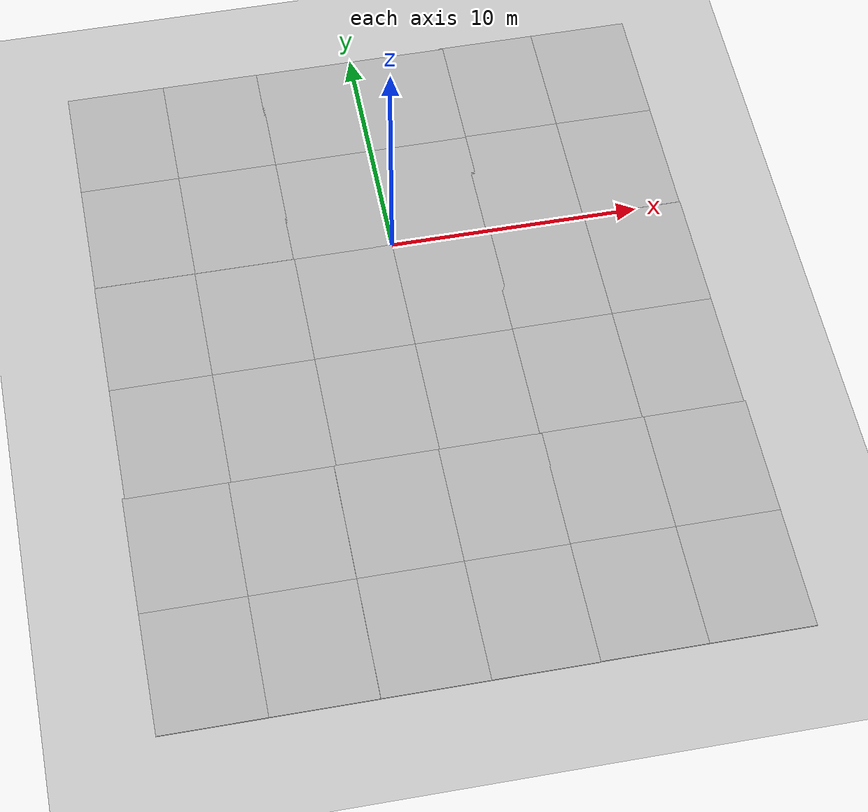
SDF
<sdf version="1.6">
 <world name="default">
  <light name="sun" type="directional">
   <pose>0 0 10 0 -0 0</pose>
   <diffuse>0.8 0.8 0.8 1</diffuse>
   <specular>0.2 0.2 0.2 1</specular>
   <attenuation>
    <range>1000</range>
    <constant>0.9</constant>
    <linear>0.01</linear>
    <quadratic>0.001</quadratic>
   </attenuation>
   <direction>-0.5 0.1 -0.9</direction>
  </light>
  <model name="ground_plane">
   <static>1</static>
   <link name="link">
    <collision name="collision">
     <geometry><plane><normal>0 0 1</normal><size>100 100</size></plane></geometry>
     <surface><friction><ode><mu>100</mu><mu2>50</mu2></ode></friction></surface>
    </collision>
    <visual name="visual">
     <cast_shadows>0</cast_shadows>
     <geometry><plane><normal>0 0 1</normal><size>100 100</size></plane></geometry>
     <material>
      <script><uri>file://media/materials/scripts/gazebo.material</uri><name>Gazebo/Grey</name></script>
     </material>
    </visual>
    <velocity_decay><linear>0</linear><angular>0</angular></velocity_decay>
   </link>
  </model>
  <physics name="default_physics" default="0" type="ode">
   <max_step_size>0.001</max_step_size>
   <real_time_factor>1</real_time_factor>
   <real_time_update_rate>1000</real_time_update_rate>
  </physics>
  <scene><ambient>0.4 0.4 0.4 1</ambient><background>0.7 0.7 0.7 1</background><shadows>1</shadows></scene>
  <gravity>0 0 -9.8</gravity>
  <magnetic_field>6e-06 2.3e-05 -4.2e-05</magnetic_field>
  <atmosphere type="adiabatic"/>
  <spherical_coordinates>
   <surface_model>EARTH_WGS84</surface_model>
   <latitude_deg>0</latitude_deg>
   <longitude_deg>0</longitude_deg>
   <elevation>0</elevation>
   <heading_deg>0</heading_deg>
  </spherical_coordinates>
  <model name="mud_box">
   <static>1</static>
   <link name="link">
    <collision name="collision"><geometry><box><size>8 10 0.2</size></box></geometry></collision>
    <visual name="visual_1">
     <pose>-2 2.5 0 0 -0 0</pose>
     <cast_shadows>0</cast_shadows>
     <geometry><box><size>4 5 0.2</size></box></geometry>
     <material>
      <script>
       <uri>model://mud_box/materials/scripts</uri>
       <uri>model://mud_box/materials/textures</uri>
       <name>vrc/mud</name>
      </script>
     </material>
    </visual>
    <visual name="visual_2">
     <pose>2 2.5 0 0 -0 0</pose>
     <cast_shadows>0</cast_shadows>
     <geometry><box><size>4 5 0.2</size></box></geometry>
     <material>
      <script>
       <uri>model://mud_box/materials/scripts</uri>
       <uri>model://mud_box/materials/textures</uri>
       <name>vrc/mud</name>
      </script>
     </material>
    </visual>
    <visual name="visual_3">
     <pose>2 -2.5 0 0 -0 0</pose>
     <cast_shadows>0</cast_shadows>
     <geometry><box><size>4 5 0.2</size></box></geometry>
     <material>
      <script>
       <uri>model://mud_box/materials/scripts</uri>
       <uri>model://mud_box/materials/textures</uri>
       <name>vrc/mud</name>
      </script>
     </material>
    </visual>
    <visual name="visual_4">
     <pose>-2 -2.5 0 0 -0 0</pose>
     <cast_shadows>0</cast_shadows>
     <geometry><box><size>4 5 0.2</size></box></geometry>
     <material>
      <script>
       <uri>model://mud_box/materials/scripts</uri>
       <uri>model://mud_box/materials/textures</uri>
       <name>vrc/mud</name>
      </script>
     </material>
    </visual>
   </link>
   <pose>-0.009651 4.99414 -0.09369 0 -0 0</pose>
  </model>
  <model name="mud_box_clone">
   <static>1</static>
   <link name="link">
    <collision name="collision"><geometry><box><size>8 10 0.2</size></box></geometry></collision>
    <visual name="visual_1">
     <pose>-2 2.5 0 0 -0 0</pose>
     <cast_shadows>0</cast_shadows>
     <geometry><box><size>4 5 0.2</size></box></geometry>
     <material>
      <script>
       <uri>model://mud_box/materials/scripts</uri>
       <uri>model://mud_box/materials/textures</uri>
       <name>vrc/mud</name>
      </script>
     </material>
    </visual>
    <visual name="visual_2">
     <pose>2 2.5 0 0 -0 0</pose>
     <cast_shadows>0</cast_shadows>
     <geometry><box><size>4 5 0.2</size></box></geometry>
     <material>
      <script>
       <uri>model://mud_box/materials/scripts</uri>
       <uri>model://mud_box/materials/textures</uri>
       <name>vrc/mud</name>
      </script>
     </material>
    </visual>
    <visual name="visual_3">
     <pose>2 -2.5 0 0 -0 0</pose>
     <cast_shadows>0</cast_shadows>
     <geometry><box><size>4 5 0.2</size></box></geometry>
     <material>
      <script>
       <uri>model://mud_box/materials/scripts</uri>
       <uri>model://mud_box/materials/textures</uri>
       <name>vrc/mud</name>
      </script>
     </material>
    </visual>
    <visual name="visual_4">
     <pose>-2 -2.5 0 0 -0 0</pose>
     <cast_shadows>0</cast_shadows>
     <geometry><box><size>4 5 0.2</size></box></geometry>
     <material>
      <script>
       <uri>model://mud_box/materials/scripts</uri>
       <uri>model://mud_box/materials/textures</uri>
       <name>vrc/mud</name>
      </script>
     </material>
    </visual>
   </link>
   <pose>-7.95883 5.00278 -0.09369 0 -0 0</pose>
  </model>
  <model name="mud_box_clone_0">
   <static>1</static>
   <link name="link">
    <collision name="collision"><geometry><box><size>8 10 0.2</size></box></geometry></collision>
    <visual name="visual_1">
     <pose>-2 2.5 0 0 -0 0</pose>
     <cast_shadows>0</cast_shadows>
     <geometry><box><size>4 5 0.2</size></box></geometry>
     <material>
      <script>
       <uri>model://mud_box/materials/scripts</uri>
       <uri>model://mud_box/materials/textures</uri>
       <name>vrc/mud</name>
      </script>
     </material>
    </visual>
    <visual name="visual_2">
     <pose>2 2.5 0 0 -0 0</pose>
     <cast_shadows>0</cast_shadows>
     <geometry><box><size>4 5 0.2</size></box></geometry>
     <material>
      <script>
       <uri>model://mud_box/materials/scripts</uri>
       <uri>model://mud_box/materials/textures</uri>
       <name>vrc/mud</name>
      </script>
     </material>
    </visual>
    <visual name="visual_3">
     <pose>2 -2.5 0 0 -0 0</pose>
     <cast_shadows>0</cast_shadows>
     <geometry><box><size>4 5 0.2</size></box></geometry>
     <material>
      <script>
       <uri>model://mud_box/materials/scripts</uri>
       <uri>model://mud_box/materials/textures</uri>
       <name>vrc/mud</name>
      </script>
     </material>
    </visual>
    <visual name="visual_4">
     <pose>-2 -2.5 0 0 -0 0</pose>
     <cast_shadows>0</cast_shadows>
     <geometry><box><size>4 5 0.2</size></box></geometry>
     <material>
      <script>
       <uri>model://mud_box/materials/scripts</uri>
       <uri>model://mud_box/materials/textures</uri>
       <name>vrc/mud</name>
      </script>
     </material>
    </visual>
   </link>
   <pose>7.82682 5.03351 -0.09369 0 -0 0</pose>
  </model>
  <model name="mud_box_clone_1">
   <static>1</static>
   <link name="link">
    <collision name="collision"><geometry><box><size>8 10 0.2</size></box></geometry></collision>
    <visual name="visual_1">
     <pose>-2 2.5 0 0 -0 0</pose>
     <cast_shadows>0</cast_shadows>
     <geometry><box><size>4 5 0.2</size></box></geometry>
     <material>
      <script>
       <uri>model://mud_box/materials/scripts</uri>
       <uri>model://mud_box/materials/textures</uri>
       <name>vrc/mud</name>
      </script>
     </material>
    </visual>
    <visual name="visual_2">
     <pose>2 2.5 0 0 -0 0</pose>
     <cast_shadows>0</cast_shadows>
     <geometry><box><size>4 5 0.2</size></box></geometry>
     <material>
      <script>
       <uri>model://mud_box/materials/scripts</uri>
       <uri>model://mud_box/materials/textures</uri>
       <name>vrc/mud</name>
      </script>
     </material>
    </visual>
    <visual name="visual_3">
     <pose>2 -2.5 0 0 -0 0</pose>
     <cast_shadows>0</cast_shadows>
     <geometry><box><size>4 5 0.2</size></box></geometry>
     <material>
      <script>
       <uri>model://mud_box/materials/scripts</uri>
       <uri>model://mud_box/materials/textures</uri>
       <name>vrc/mud</name>
      </script>
     </material>
    </visual>
    <visual name="visual_4">
     <pose>-2 -2.5 0 0 -0 0</pose>
     <cast_shadows>0</cast_shadows>
     <geometry><box><size>4 5 0.2</size></box></geometry>
     <material>
      <script>
       <uri>model://mud_box/materials/scripts</uri>
       <uri>model://mud_box/materials/textures</uri>
       <name>vrc/mud</name>
      </script>
     </material>
    </visual>
   </link>
   <pose>-0.016926 -4.99258 -0.09369 0 -0 0</pose>
  </model>
  <model name="mud_box_clone_2">
   <static>1</static>
   <link name="link">
    <collision name="collision"><geometry><box><size>8 10 0.2</size></box></geometry></collision>
    <visual name="visual_1">
     <pose>-2 2.5 0 0 -0 0</pose>
     <cast_shadows>0</cast_shadows>
     <geometry><box><size>4 5 0.2</size></box></geometry>
     <material>
      <script>
       <uri>model://mud_box/materials/scripts</uri>
       <uri>model://mud_box/materials/textures</uri>
       <name>vrc/mud</name>
      </script>
     </material>
    </visual>
    <visual name="visual_2">
     <pose>2 2.5 0 0 -0 0</pose>
     <cast_shadows>0</cast_shadows>
     <geometry><box><size>4 5 0.2</size></box></geometry>
     <material>
      <script>
       <uri>model://mud_box/materials/scripts</uri>
       <uri>model://mud_box/materials/textures</uri>
       <name>vrc/mud</name>
      </script>
     </material>
    </visual>
    <visual name="visual_3">
     <pose>2 -2.5 0 0 -0 0</pose>
     <cast_shadows>0</cast_shadows>
     <geometry><box><size>4 5 0.2</size></box></geometry>
     <material>
      <script>
       <uri>model://mud_box/materials/scripts</uri>
       <uri>model://mud_box/materials/textures</uri>
       <name>vrc/mud</name>
      </script>
     </material>
    </visual>
    <visual name="visual_4">
     <pose>-2 -2.5 0 0 -0 0</pose>
     <cast_shadows>0</cast_shadows>
     <geometry><box><size>4 5 0.2</size></box></geometry>
     <material>
      <script>
       <uri>model://mud_box/materials/scripts</uri>
       <uri>model://mud_box/materials/textures</uri>
       <name>vrc/mud</name>
      </script>
     </material>
    </visual>
   </link>
   <pose>-7.97494 -5.0024 -0.09369 0 -0 0</pose>
  </model>
  <model name="mud_box_clone_3">
   <static>1</static>
   <link name="link">
    <collision name="collision"><geometry><box><size>8 10 0.2</size></box></geometry></collision>
    <visual name="visual_1">
     <pose>-2 2.5 0 0 -0 0</pose>
     <cast_shadows>0</cast_shadows>
     <geometry><box><size>4 5 0.2</size></box></geometry>
     <material>
      <script>
       <uri>model://mud_box/materials/scripts</uri>
       <uri>model://mud_box/materials/textures</uri>
       <name>vrc/mud</name>
      </script>
     </material>
    </visual>
    <visual name="visual_2">
     <pose>2 2.5 0 0 -0 0</pose>
     <cast_shadows>0</cast_shadows>
     <geometry><box><size>4 5 0.2</size></box></geometry>
     <material>
      <script>
       <uri>model://mud_box/materials/scripts</uri>
       <uri>model://mud_box/materials/textures</uri>
       <name>vrc/mud</name>
      </script>
     </material>
    </visual>
    <visual name="visual_3">
     <pose>2 -2.5 0 0 -0 0</pose>
     <cast_shadows>0</cast_shadows>
     <geometry><box><size>4 5 0.2</size></box></geometry>
     <material>
      <script>
       <uri>model://mud_box/materials/scripts</uri>
       <uri>model://mud_box/materials/textures</uri>
       <name>vrc/mud</name>
      </script>
     </material>
    </visual>
    <visual name="visual_4">
     <pose>-2 -2.5 0 0 -0 0</pose>
     <cast_shadows>0</cast_shadows>
     <geometry><box><size>4 5 0.2</size></box></geometry>
     <material>
      <script>
       <uri>model://mud_box/materials/scripts</uri>
       <uri>model://mud_box/materials/textures</uri>
       <name>vrc/mud</name>
      </script>
     </material>
    </visual>
   </link>
   <pose>7.85073 -4.97133 -0.09369 0 -0 0</pose>
  </model>
  <model name="mud_box_clone_1_clone">
   <static>1</static>
   <link name="link">
    <collision name="collision"><geometry><box><size>8 10 0.2</size></box></geometry></collision>
    <visual name="visual_1">
     <pose>-2 2.5 0 0 -0 0</pose>
     <cast_shadows>0</cast_shadows>
     <geometry><box><size>4 5 0.2</size></box></geometry>
     <material>
      <script>
       <uri>model://mud_box/materials/scripts</uri>
       <uri>model://mud_box/materials/textures</uri>
       <name>vrc/mud</name>
      </script>
     </material>
    </visual>
    <visual name="visual_2">
     <pose>2 2.5 0 0 -0 0</pose>
     <cast_shadows>0</cast_shadows>
     <geometry><box><size>4 5 0.2</size></box></geometry>
     <material>
      <script>
       <uri>model://mud_box/materials/scripts</uri>
       <uri>model://mud_box/materials/textures</uri>
       <name>vrc/mud</name>
      </script>
     </material>
    </visual>
    <visual name="visual_3">
     <pose>2 -2.5 0 0 -0 0</pose>
     <cast_shadows>0</cast_shadows>
     <geometry><box><size>4 5 0.2</size></box></geometry>
     <material>
      <script>
       <uri>model://mud_box/materials/scripts</uri>
       <uri>model://mud_box/materials/textures</uri>
       <name>vrc/mud</name>
      </script>
     </material>
    </visual>
    <visual name="visual_4">
     <pose>-2 -2.5 0 0 -0 0</pose>
     <cast_shadows>0</cast_shadows>
     <geometry><box><size>4 5 0.2</size></box></geometry>
     <material>
      <script>
       <uri>model://mud_box/materials/scripts</uri>
       <uri>model://mud_box/materials/textures</uri>
       <name>vrc/mud</name>
      </script>
     </material>
    </visual>
   </link>
   <pose>-0.063415 -14.9826 -0.09369 0 -0 0</pose>
  </model>
  <model name="mud_box_clone_1_clone_0">
   <static>1</static>
   <link name="link">
    <collision name="collision"><geometry><box><size>8 10 0.2</size></box></geometry></collision>
    <visual name="visual_1">
     <pose>-2 2.5 0 0 -0 0</pose>
     <cast_shadows>0</cast_shadows>
     <geometry><box><size>4 5 0.2</size></box></geometry>
     <material>
      <script>
       <uri>model://mud_box/materials/scripts</uri>
       <uri>model://mud_box/materials/textures</uri>
       <name>vrc/mud</name>
      </script>
     </material>
    </visual>
    <visual name="visual_2">
     <pose>2 2.5 0 0 -0 0</pose>
     <cast_shadows>0</cast_shadows>
     <geometry><box><size>4 5 0.2</size></box></geometry>
     <material>
      <script>
       <uri>model://mud_box/materials/scripts</uri>
       <uri>model://mud_box/materials/textures</uri>
       <name>vrc/mud</name>
      </script>
     </material>
    </visual>
    <visual name="visual_3">
     <pose>2 -2.5 0 0 -0 0</pose>
     <cast_shadows>0</cast_shadows>
     <geometry><box><size>4 5 0.2</size></box></geometry>
     <material>
      <script>
       <uri>model://mud_box/materials/scripts</uri>
       <uri>model://mud_box/materials/textures</uri>
       <name>vrc/mud</name>
      </script>
     </material>
    </visual>
    <visual name="visual_4">
     <pose>-2 -2.5 0 0 -0 0</pose>
     <cast_shadows>0</cast_shadows>
     <geometry><box><size>4 5 0.2</size></box></geometry>
     <material>
      <script>
       <uri>model://mud_box/materials/scripts</uri>
       <uri>model://mud_box/materials/textures</uri>
       <name>vrc/mud</name>
      </script>
     </material>
    </visual>
   </link>
   <pose>-8.06626 -14.9843 -0.09369 0 -0 0</pose>
  </model>
  <model name="mud_box_clone_1_clone_1">
   <static>1</static>
   <link name="link">
    <collision name="collision"><geometry><box><size>8 10 0.2</size></box></geometry></collision>
    <visual name="visual_1">
     <pose>-2 2.5 0 0 -0 0</pose>
     <cast_shadows>0</cast_shadows>
     <geometry><box><size>4 5 0.2</size></box></geometry>
     <material>
      <script>
       <uri>model://mud_box/materials/scripts</uri>
       <uri>model://mud_box/materials/textures</uri>
       <name>vrc/mud</name>
      </script>
     </material>
    </visual>
    <visual name="visual_2">
     <pose>2 2.5 0 0 -0 0</pose>
     <cast_shadows>0</cast_shadows>
     <geometry><box><size>4 5 0.2</size></box></geometry>
     <material>
      <script>
       <uri>model://mud_box/materials/scripts</uri>
       <uri>model://mud_box/materials/textures</uri>
       <name>vrc/mud</name>
      </script>
     </material>
    </visual>
    <visual name="visual_3">
     <pose>2 -2.5 0 0 -0 0</pose>
     <cast_shadows>0</cast_shadows>
     <geometry><box><size>4 5 0.2</size></box></geometry>
     <material>
      <script>
       <uri>model://mud_box/materials/scripts</uri>
       <uri>model://mud_box/materials/textures</uri>
       <name>vrc/mud</name>
      </script>
     </material>
    </visual>
    <visual name="visual_4">
     <pose>-2 -2.5 0 0 -0 0</pose>
     <cast_shadows>0</cast_shadows>
     <geometry><box><size>4 5 0.2</size></box></geometry>
     <material>
      <script>
       <uri>model://mud_box/materials/scripts</uri>
       <uri>model://mud_box/materials/textures</uri>
       <name>vrc/mud</name>
      </script>
     </material>
    </visual>
   </link>
   <pose>7.91254 -14.9674 -0.09369 0 -0 0</pose>
  </model>
 </world>
</sdf>
